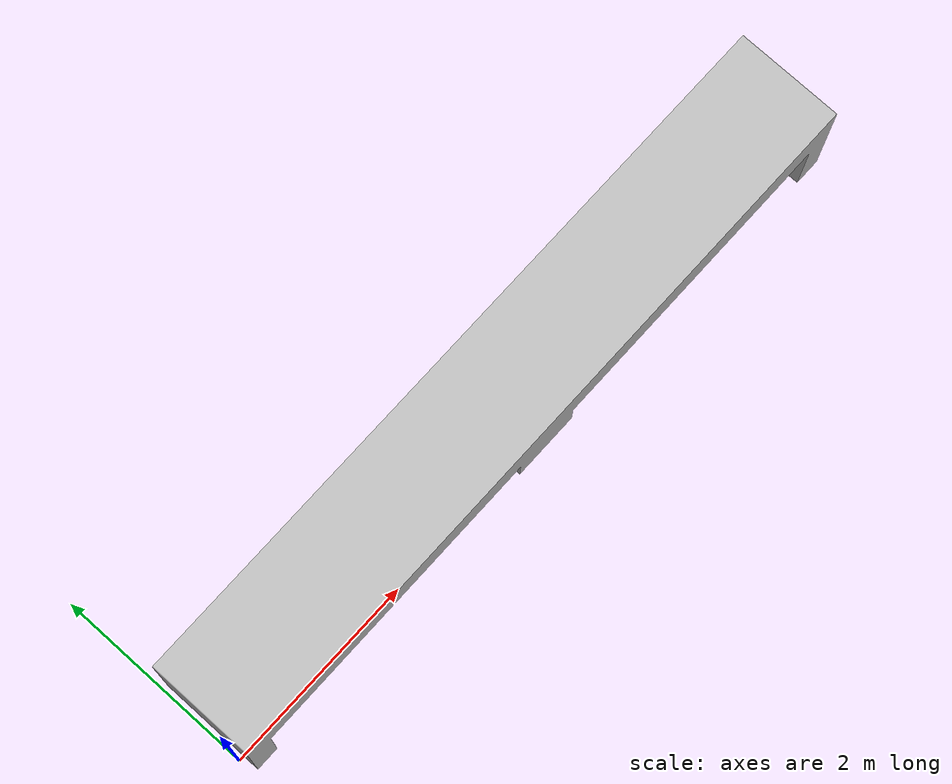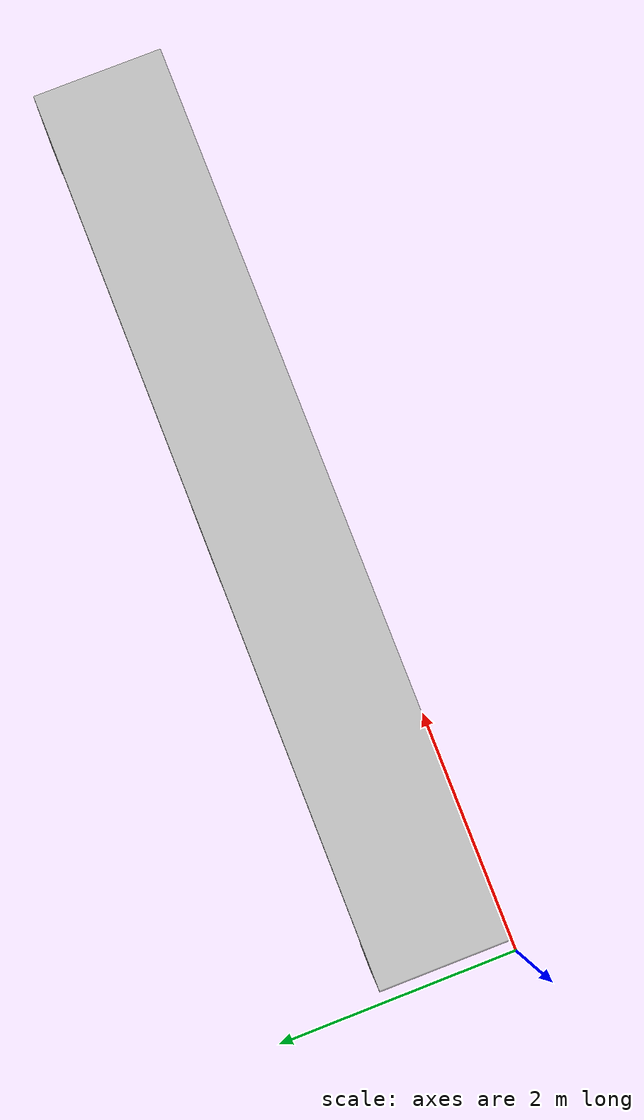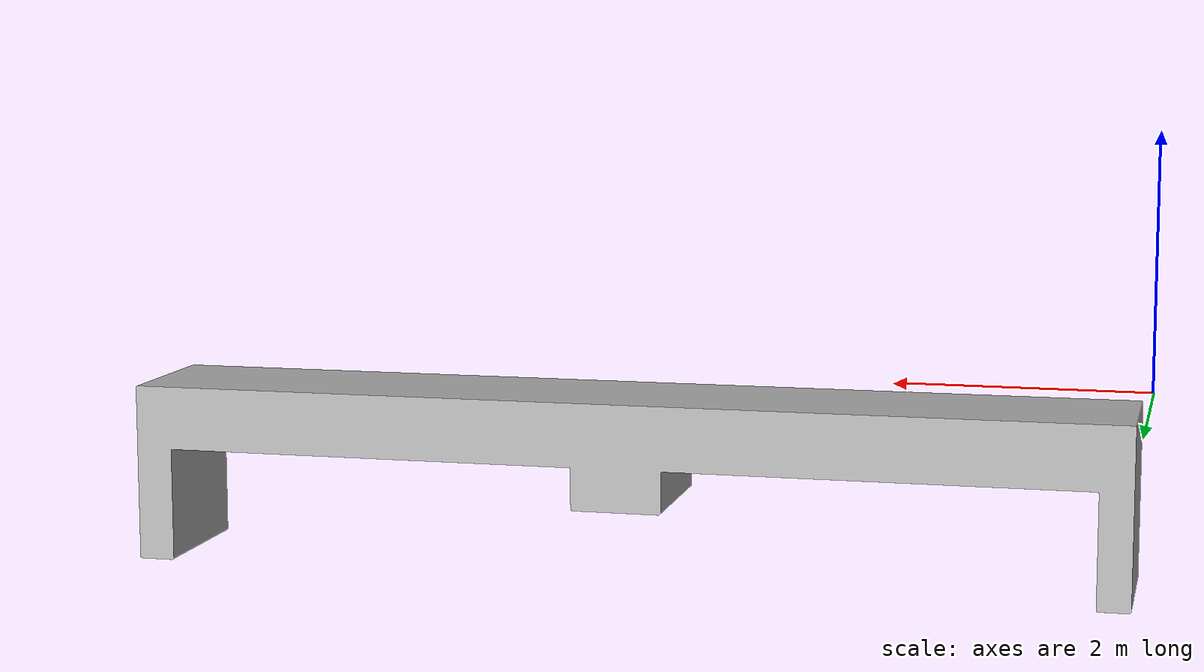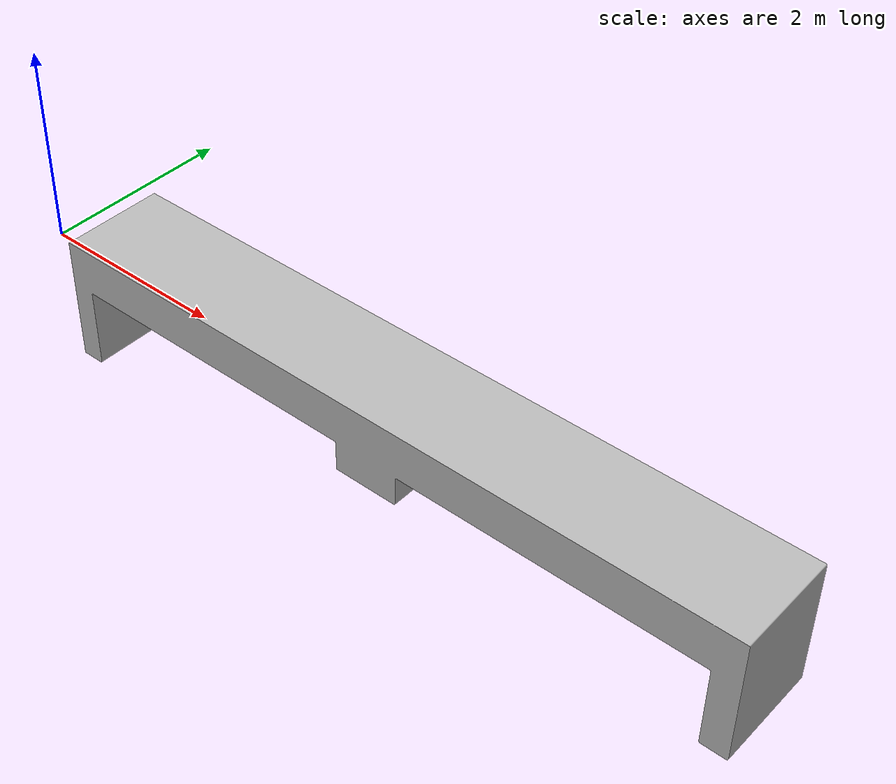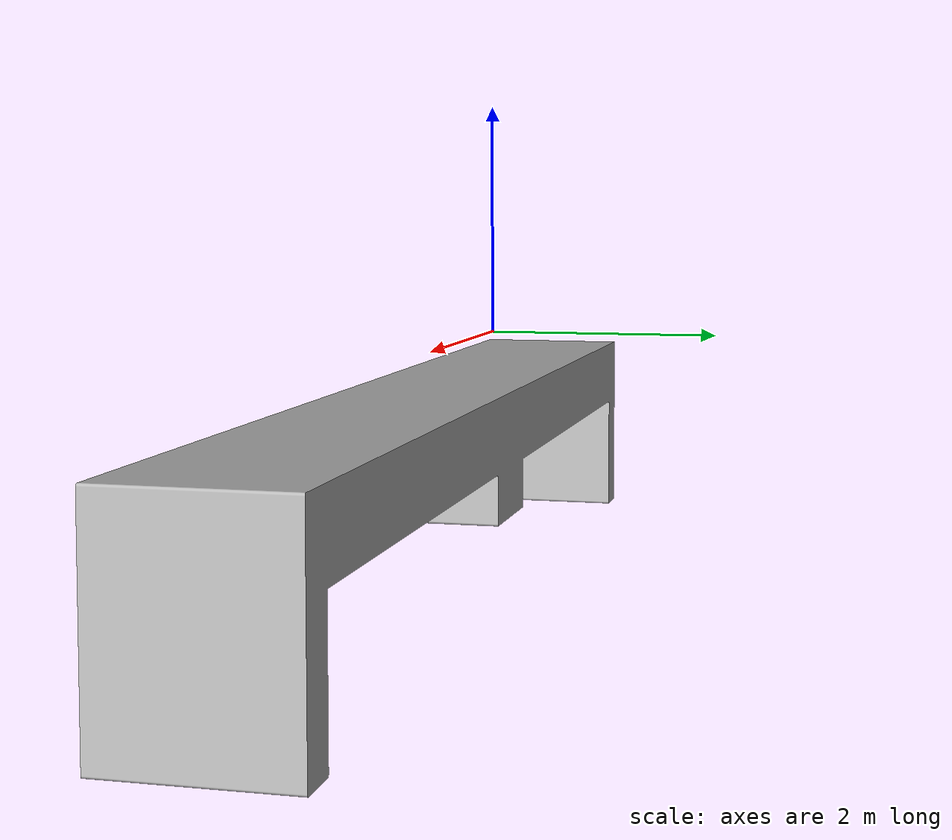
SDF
<?xml version="1.0" ?>
<sdf version="1.6">
  <model name="front_wall">
    <pose>0 0 0 0 0 0</pose>
    <static>true</static>
    <link name="body">
      <visual name="visual">
        <geometry>
          <mesh><uri>model://front_wall/meshes/front_wall.dae</uri></mesh>
        </geometry>
      </visual>
      <collision name="collision">
        <geometry>
          <mesh><uri>model://front_wall/meshes/front_wall.dae</uri></mesh>
        </geometry>
      </collision>
    </link>
  </model>
</sdf>
